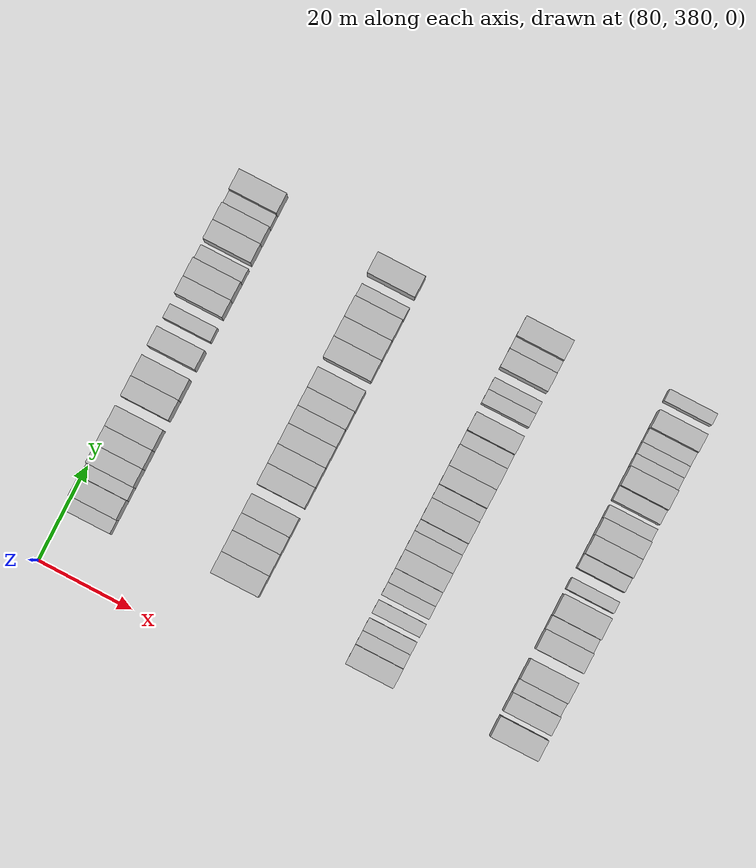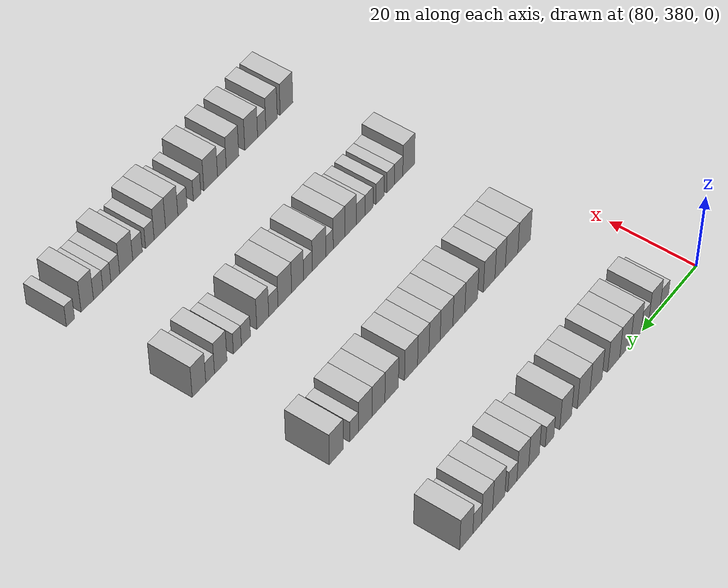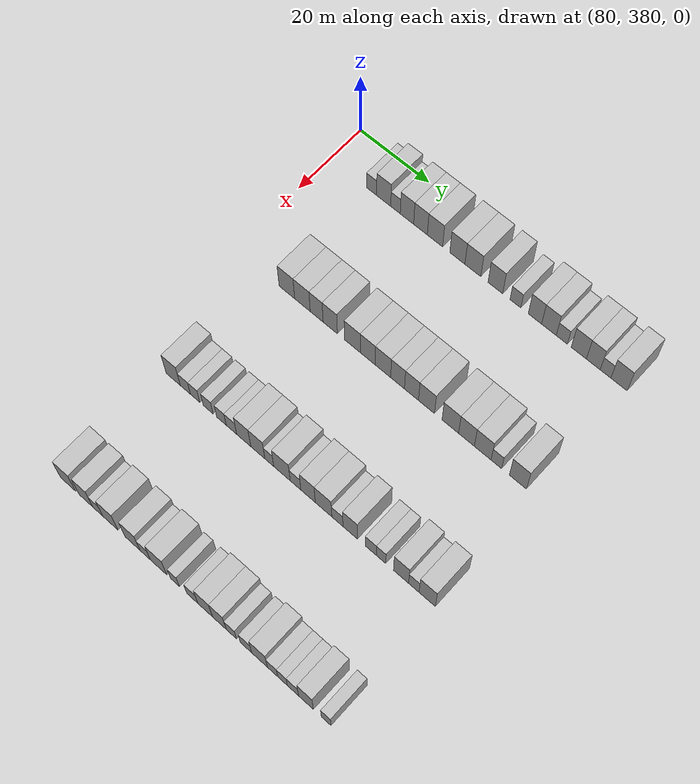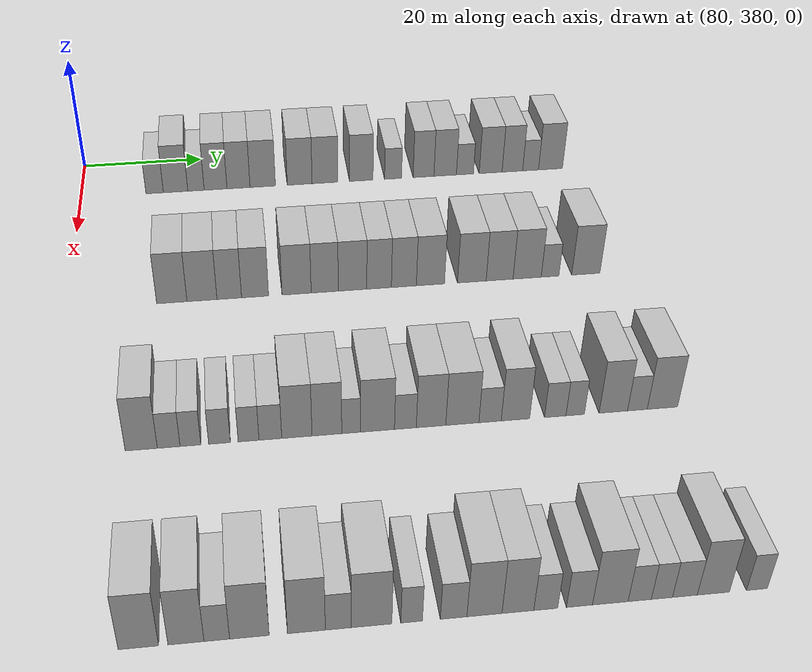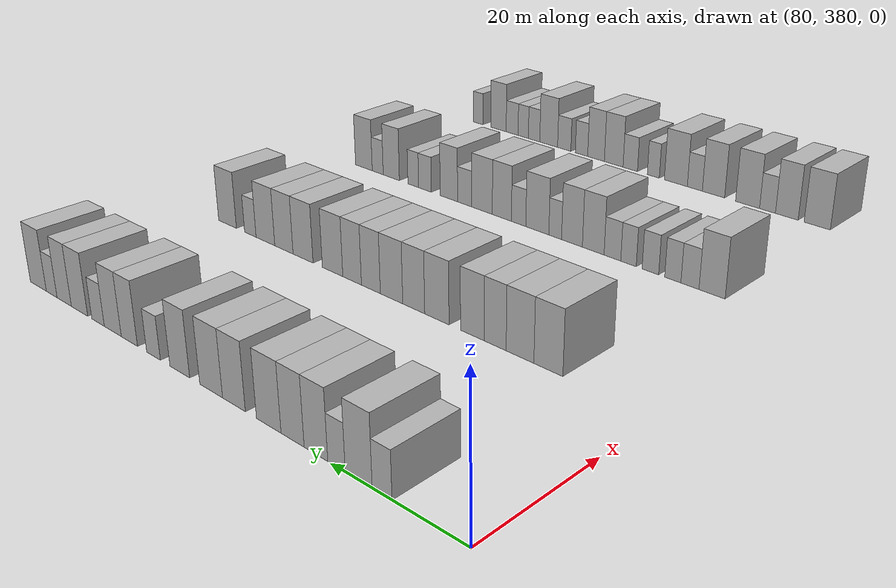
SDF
<sdf version="1.6">
 <world name="default">
  <model name="building_658">
   <static>1</static>
   <pose>85.0000 392.1734 0 0.000000 0.000000 0.000000</pose>
   <link name="link">
    <pose>0 0 3.00 0 0 0</pose>
    <collision name="collision"><geometry><box><size>10.0000 2.8932 6.0000</size></box></geometry></collision>
    <visual name="visual">
     <cast_shadows>0</cast_shadows>
     <geometry><box><size>10.0000 2.8932 6.0000</size></box></geometry>
     <material>
      <script>
       <uri>model://HANNAS_wall/materials/scripts</uri>
       <uri>model://HANNAS_wall/materials/textures</uri>
       <name>vrc/HANNAS_wall</name>
      </script>
     </material>
    </visual>
   </link>
  </model>
  <model name="building_659">
   <static>1</static>
   <pose>85.0000 395.6587 0 0.000000 0.000000 0.000000</pose>
   <link name="link">
    <pose>0 0 4.50 0 0 0</pose>
    <collision name="collision"><geometry><box><size>10.0000 4.0774 9.0000</size></box></geometry></collision>
    <visual name="visual">
     <cast_shadows>0</cast_shadows>
     <geometry><box><size>10.0000 4.0774 9.0000</size></box></geometry>
     <material>
      <script>
       <uri>model://HANNAS_wall/materials/scripts</uri>
       <uri>model://HANNAS_wall/materials/textures</uri>
       <name>vrc/HANNAS_wall</name>
      </script>
     </material>
    </visual>
   </link>
  </model>
  <model name="building_660">
   <static>1</static>
   <pose>85.0000 399.0635 0 0.000000 0.000000 0.000000</pose>
   <link name="link">
    <pose>0 0 3.00 0 0 0</pose>
    <collision name="collision"><geometry><box><size>10.0000 2.7323 6.0000</size></box></geometry></collision>
    <visual name="visual">
     <cast_shadows>0</cast_shadows>
     <geometry><box><size>10.0000 2.7323 6.0000</size></box></geometry>
     <material>
      <script>
       <uri>model://HANNAS_wall/materials/scripts</uri>
       <uri>model://HANNAS_wall/materials/textures</uri>
       <name>vrc/HANNAS_wall</name>
      </script>
     </material>
    </visual>
   </link>
  </model>
  <model name="building_661">
   <static>1</static>
   <pose>85.0000 402.3407 0 0.000000 0.000000 0.000000</pose>
   <link name="link">
    <pose>0 0 4.50 0 0 0</pose>
    <collision name="collision"><geometry><box><size>10.0000 3.8220 9.0000</size></box></geometry></collision>
    <visual name="visual">
     <cast_shadows>0</cast_shadows>
     <geometry><box><size>10.0000 3.8220 9.0000</size></box></geometry>
     <material>
      <script>
       <uri>model://HANNAS_wall/materials/scripts</uri>
       <uri>model://HANNAS_wall/materials/textures</uri>
       <name>vrc/HANNAS_wall</name>
      </script>
     </material>
    </visual>
   </link>
  </model>
  <model name="building_662">
   <static>1</static>
   <pose>85.0000 406.1912 0 0.000000 0.000000 0.000000</pose>
   <link name="link">
    <pose>0 0 4.50 0 0 0</pose>
    <collision name="collision"><geometry><box><size>10.0000 3.8790 9.0000</size></box></geometry></collision>
    <visual name="visual">
     <cast_shadows>0</cast_shadows>
     <geometry><box><size>10.0000 3.8790 9.0000</size></box></geometry>
     <material>
      <script>
       <uri>model://HANNAS_wall/materials/scripts</uri>
       <uri>model://HANNAS_wall/materials/textures</uri>
       <name>vrc/HANNAS_wall</name>
      </script>
     </material>
    </visual>
   </link>
  </model>
  <model name="building_663">
   <static>1</static>
   <pose>85.0000 410.2758 0 0.000000 0.000000 0.000000</pose>
   <link name="link">
    <pose>0 0 4.50 0 0 0</pose>
    <collision name="collision"><geometry><box><size>10.0000 4.2902 9.0000</size></box></geometry></collision>
    <visual name="visual">
     <cast_shadows>0</cast_shadows>
     <geometry><box><size>10.0000 4.2902 9.0000</size></box></geometry>
     <material>
      <script>
       <uri>model://HANNAS_wall/materials/scripts</uri>
       <uri>model://HANNAS_wall/materials/textures</uri>
       <name>vrc/HANNAS_wall</name>
      </script>
     </material>
    </visual>
   </link>
  </model>
  <model name="building_664">
   <static>1</static>
   <pose>85.0000 416.5309 0 0.000000 0.000000 0.000000</pose>
   <link name="link">
    <pose>0 0 4.50 0 0 0</pose>
    <collision name="collision"><geometry><box><size>10.0000 4.2202 9.0000</size></box></geometry></collision>
    <visual name="visual">
     <cast_shadows>0</cast_shadows>
     <geometry><box><size>10.0000 4.2202 9.0000</size></box></geometry>
     <material>
      <script>
       <uri>model://HANNAS_wall/materials/scripts</uri>
       <uri>model://HANNAS_wall/materials/textures</uri>
       <name>vrc/HANNAS_wall</name>
      </script>
     </material>
    </visual>
   </link>
  </model>
  <model name="building_665">
   <static>1</static>
   <pose>85.0000 420.8338 0 0.000000 0.000000 0.000000</pose>
   <link name="link">
    <pose>0 0 4.50 0 0 0</pose>
    <collision name="collision"><geometry><box><size>10.0000 4.3856 9.0000</size></box></geometry></collision>
    <visual name="visual">
     <cast_shadows>0</cast_shadows>
     <geometry><box><size>10.0000 4.3856 9.0000</size></box></geometry>
     <material>
      <script>
       <uri>model://HANNAS_wall/materials/scripts</uri>
       <uri>model://HANNAS_wall/materials/textures</uri>
       <name>vrc/HANNAS_wall</name>
      </script>
     </material>
    </visual>
   </link>
  </model>
  <model name="building_666">
   <static>1</static>
   <pose>85.0000 427.0337 0 0.000000 0.000000 0.000000</pose>
   <link name="link">
    <pose>0 0 4.50 0 0 0</pose>
    <collision name="collision"><geometry><box><size>10.0000 4.0142 9.0000</size></box></geometry></collision>
    <visual name="visual">
     <cast_shadows>0</cast_shadows>
     <geometry><box><size>10.0000 4.0142 9.0000</size></box></geometry>
     <material>
      <script>
       <uri>model://HANNAS_wall/materials/scripts</uri>
       <uri>model://HANNAS_wall/materials/textures</uri>
       <name>vrc/HANNAS_wall</name>
      </script>
     </material>
    </visual>
   </link>
  </model>
  <model name="building_667">
   <static>1</static>
   <pose>85.0000 432.5005 0 0.000000 0.000000 0.000000</pose>
   <link name="link">
    <pose>0 0 3.00 0 0 0</pose>
    <collision name="collision"><geometry><box><size>10.0000 2.9193 6.0000</size></box></geometry></collision>
    <visual name="visual">
     <cast_shadows>0</cast_shadows>
     <geometry><box><size>10.0000 2.9193 6.0000</size></box></geometry>
     <material>
      <script>
       <uri>model://HANNAS_wall/materials/scripts</uri>
       <uri>model://HANNAS_wall/materials/textures</uri>
       <name>vrc/HANNAS_wall</name>
      </script>
     </material>
    </visual>
   </link>
  </model>
  <model name="building_668">
   <static>1</static>
   <pose>85.0000 437.7618 0 0.000000 0.000000 0.000000</pose>
   <link name="link">
    <pose>0 0 4.50 0 0 0</pose>
    <collision name="collision"><geometry><box><size>10.0000 3.6034 9.0000</size></box></geometry></collision>
    <visual name="visual">
     <cast_shadows>0</cast_shadows>
     <geometry><box><size>10.0000 3.6034 9.0000</size></box></geometry>
     <material>
      <script>
       <uri>model://HANNAS_wall/materials/scripts</uri>
       <uri>model://HANNAS_wall/materials/textures</uri>
       <name>vrc/HANNAS_wall</name>
      </script>
     </material>
    </visual>
   </link>
  </model>
  <model name="building_669">
   <static>1</static>
   <pose>85.0000 441.5146 0 0.000000 0.000000 0.000000</pose>
   <link name="link">
    <pose>0 0 4.50 0 0 0</pose>
    <collision name="collision"><geometry><box><size>10.0000 3.9021 9.0000</size></box></geometry></collision>
    <visual name="visual">
     <cast_shadows>0</cast_shadows>
     <geometry><box><size>10.0000 3.9021 9.0000</size></box></geometry>
     <material>
      <script>
       <uri>model://HANNAS_wall/materials/scripts</uri>
       <uri>model://HANNAS_wall/materials/textures</uri>
       <name>vrc/HANNAS_wall</name>
      </script>
     </material>
    </visual>
   </link>
  </model>
  <model name="building_670">
   <static>1</static>
   <pose>85.0000 444.9420 0 0.000000 0.000000 0.000000</pose>
   <link name="link">
    <pose>0 0 3.00 0 0 0</pose>
    <collision name="collision"><geometry><box><size>10.0000 2.9528 6.0000</size></box></geometry></collision>
    <visual name="visual">
     <cast_shadows>0</cast_shadows>
     <geometry><box><size>10.0000 2.9528 6.0000</size></box></geometry>
     <material>
      <script>
       <uri>model://HANNAS_wall/materials/scripts</uri>
       <uri>model://HANNAS_wall/materials/textures</uri>
       <name>vrc/HANNAS_wall</name>
      </script>
     </material>
    </visual>
   </link>
  </model>
  <model name="building_671">
   <static>1</static>
   <pose>85.0000 449.4166 0 0.000000 0.000000 0.000000</pose>
   <link name="link">
    <pose>0 0 4.50 0 0 0</pose>
    <collision name="collision"><geometry><box><size>10.0000 3.9965 9.0000</size></box></geometry></collision>
    <visual name="visual">
     <cast_shadows>0</cast_shadows>
     <geometry><box><size>10.0000 3.9965 9.0000</size></box></geometry>
     <material>
      <script>
       <uri>model://HANNAS_wall/materials/scripts</uri>
       <uri>model://HANNAS_wall/materials/textures</uri>
       <name>vrc/HANNAS_wall</name>
      </script>
     </material>
    </visual>
   </link>
  </model>
  <model name="building_672">
   <static>1</static>
   <pose>85.0000 453.2218 0 0.000000 0.000000 0.000000</pose>
   <link name="link">
    <pose>0 0 4.50 0 0 0</pose>
    <collision name="collision"><geometry><box><size>10.0000 3.6138 9.0000</size></box></geometry></collision>
    <visual name="visual">
     <cast_shadows>0</cast_shadows>
     <geometry><box><size>10.0000 3.6138 9.0000</size></box></geometry>
     <material>
      <script>
       <uri>model://HANNAS_wall/materials/scripts</uri>
       <uri>model://HANNAS_wall/materials/textures</uri>
       <name>vrc/HANNAS_wall</name>
      </script>
     </material>
    </visual>
   </link>
  </model>
  <model name="building_673">
   <static>1</static>
   <pose>85.0000 456.4188 0 0.000000 0.000000 0.000000</pose>
   <link name="link">
    <pose>0 0 3.00 0 0 0</pose>
    <collision name="collision"><geometry><box><size>10.0000 2.7802 6.0000</size></box></geometry></collision>
    <visual name="visual">
     <cast_shadows>0</cast_shadows>
     <geometry><box><size>10.0000 2.7802 6.0000</size></box></geometry>
     <material>
      <script>
       <uri>model://HANNAS_wall/materials/scripts</uri>
       <uri>model://HANNAS_wall/materials/textures</uri>
       <name>vrc/HANNAS_wall</name>
      </script>
     </material>
    </visual>
   </link>
  </model>
  <model name="building_674">
   <static>1</static>
   <pose>85.0000 459.9194 0 0.000000 0.000000 0.000000</pose>
   <link name="link">
    <pose>0 0 4.50 0 0 0</pose>
    <collision name="collision"><geometry><box><size>10.0000 4.2210 9.0000</size></box></geometry></collision>
    <visual name="visual">
     <cast_shadows>0</cast_shadows>
     <geometry><box><size>10.0000 4.2210 9.0000</size></box></geometry>
     <material>
      <script>
       <uri>model://HANNAS_wall/materials/scripts</uri>
       <uri>model://HANNAS_wall/materials/textures</uri>
       <name>vrc/HANNAS_wall</name>
      </script>
     </material>
    </visual>
   </link>
  </model>
  <model name="building_876">
   <static>1</static>
   <pose>115.0000 395.3106 0 0.000000 0.000000 0.000000</pose>
   <link name="link">
    <pose>0 0 4.50 0 0 0</pose>
    <collision name="collision"><geometry><box><size>10.0000 4.4560 9.0000</size></box></geometry></collision>
    <visual name="visual">
     <cast_shadows>0</cast_shadows>
     <geometry><box><size>10.0000 4.4560 9.0000</size></box></geometry>
     <material>
      <script>
       <uri>model://HANNAS_wall/materials/scripts</uri>
       <uri>model://HANNAS_wall/materials/textures</uri>
       <name>vrc/HANNAS_wall</name>
      </script>
     </material>
    </visual>
   </link>
  </model>
  <model name="building_877">
   <static>1</static>
   <pose>115.0000 399.7541 0 0.000000 0.000000 0.000000</pose>
   <link name="link">
    <pose>0 0 4.50 0 0 0</pose>
    <collision name="collision"><geometry><box><size>10.0000 4.4310 9.0000</size></box></geometry></collision>
    <visual name="visual">
     <cast_shadows>0</cast_shadows>
     <geometry><box><size>10.0000 4.4310 9.0000</size></box></geometry>
     <material>
      <script>
       <uri>model://HANNAS_wall/materials/scripts</uri>
       <uri>model://HANNAS_wall/materials/textures</uri>
       <name>vrc/HANNAS_wall</name>
      </script>
     </material>
    </visual>
   </link>
  </model>
  <model name="building_878">
   <static>1</static>
   <pose>115.0000 403.7869 0 0.000000 0.000000 0.000000</pose>
   <link name="link">
    <pose>0 0 4.50 0 0 0</pose>
    <collision name="collision"><geometry><box><size>10.0000 3.6346 9.0000</size></box></geometry></collision>
    <visual name="visual">
     <cast_shadows>0</cast_shadows>
     <geometry><box><size>10.0000 3.6346 9.0000</size></box></geometry>
     <material>
      <script>
       <uri>model://HANNAS_wall/materials/scripts</uri>
       <uri>model://HANNAS_wall/materials/textures</uri>
       <name>vrc/HANNAS_wall</name>
      </script>
     </material>
    </visual>
   </link>
  </model>
  <model name="building_879">
   <static>1</static>
   <pose>115.0000 407.6170 0 0.000000 0.000000 0.000000</pose>
   <link name="link">
    <pose>0 0 4.50 0 0 0</pose>
    <collision name="collision"><geometry><box><size>10.0000 4.0255 9.0000</size></box></geometry></collision>
    <visual name="visual">
     <cast_shadows>0</cast_shadows>
     <geometry><box><size>10.0000 4.0255 9.0000</size></box></geometry>
     <material>
      <script>
       <uri>model://HANNAS_wall/materials/scripts</uri>
       <uri>model://HANNAS_wall/materials/textures</uri>
       <name>vrc/HANNAS_wall</name>
      </script>
     </material>
    </visual>
   </link>
  </model>
  <model name="building_880">
   <static>1</static>
   <pose>115.0000 413.8127 0 0.000000 0.000000 0.000000</pose>
   <link name="link">
    <pose>0 0 4.50 0 0 0</pose>
    <collision name="collision"><geometry><box><size>10.0000 4.3660 9.0000</size></box></geometry></collision>
    <visual name="visual">
     <cast_shadows>0</cast_shadows>
     <geometry><box><size>10.0000 4.3660 9.0000</size></box></geometry>
     <material>
      <script>
       <uri>model://HANNAS_wall/materials/scripts</uri>
       <uri>model://HANNAS_wall/materials/textures</uri>
       <name>vrc/HANNAS_wall</name>
      </script>
     </material>
    </visual>
   </link>
  </model>
  <model name="building_881">
   <static>1</static>
   <pose>115.0000 418.0330 0 0.000000 0.000000 0.000000</pose>
   <link name="link">
    <pose>0 0 4.50 0 0 0</pose>
    <collision name="collision"><geometry><box><size>10.0000 4.0745 9.0000</size></box></geometry></collision>
    <visual name="visual">
     <cast_shadows>0</cast_shadows>
     <geometry><box><size>10.0000 4.0745 9.0000</size></box></geometry>
     <material>
      <script>
       <uri>model://HANNAS_wall/materials/scripts</uri>
       <uri>model://HANNAS_wall/materials/textures</uri>
       <name>vrc/HANNAS_wall</name>
      </script>
     </material>
    </visual>
   </link>
  </model>
  <model name="building_882">
   <static>1</static>
   <pose>115.0000 422.2155 0 0.000000 0.000000 0.000000</pose>
   <link name="link">
    <pose>0 0 4.50 0 0 0</pose>
    <collision name="collision"><geometry><box><size>10.0000 4.2906 9.0000</size></box></geometry></collision>
    <visual name="visual">
     <cast_shadows>0</cast_shadows>
     <geometry><box><size>10.0000 4.2906 9.0000</size></box></geometry>
     <material>
      <script>
       <uri>model://HANNAS_wall/materials/scripts</uri>
       <uri>model://HANNAS_wall/materials/textures</uri>
       <name>vrc/HANNAS_wall</name>
      </script>
     </material>
    </visual>
   </link>
  </model>
  <model name="building_883">
   <static>1</static>
   <pose>115.0000 426.2298 0 0.000000 0.000000 0.000000</pose>
   <link name="link">
    <pose>0 0 4.50 0 0 0</pose>
    <collision name="collision"><geometry><box><size>10.0000 3.7380 9.0000</size></box></geometry></collision>
    <visual name="visual">
     <cast_shadows>0</cast_shadows>
     <geometry><box><size>10.0000 3.7380 9.0000</size></box></geometry>
     <material>
      <script>
       <uri>model://HANNAS_wall/materials/scripts</uri>
       <uri>model://HANNAS_wall/materials/textures</uri>
       <name>vrc/HANNAS_wall</name>
      </script>
     </material>
    </visual>
   </link>
  </model>
  <model name="building_884">
   <static>1</static>
   <pose>115.0000 429.9997 0 0.000000 0.000000 0.000000</pose>
   <link name="link">
    <pose>0 0 4.50 0 0 0</pose>
    <collision name="collision"><geometry><box><size>10.0000 3.8019 9.0000</size></box></geometry></collision>
    <visual name="visual">
     <cast_shadows>0</cast_shadows>
     <geometry><box><size>10.0000 3.8019 9.0000</size></box></geometry>
     <material>
      <script>
       <uri>model://HANNAS_wall/materials/scripts</uri>
       <uri>model://HANNAS_wall/materials/textures</uri>
       <name>vrc/HANNAS_wall</name>
      </script>
     </material>
    </visual>
   </link>
  </model>
  <model name="building_885">
   <static>1</static>
   <pose>115.0000 434.0462 0 0.000000 0.000000 0.000000</pose>
   <link name="link">
    <pose>0 0 4.50 0 0 0</pose>
    <collision name="collision"><geometry><box><size>10.0000 4.2912 9.0000</size></box></geometry></collision>
    <visual name="visual">
     <cast_shadows>0</cast_shadows>
     <geometry><box><size>10.0000 4.2912 9.0000</size></box></geometry>
     <material>
      <script>
       <uri>model://HANNAS_wall/materials/scripts</uri>
       <uri>model://HANNAS_wall/materials/textures</uri>
       <name>vrc/HANNAS_wall</name>
      </script>
     </material>
    </visual>
   </link>
  </model>
  <model name="building_886">
   <static>1</static>
   <pose>115.0000 440.3909 0 0.000000 0.000000 0.000000</pose>
   <link name="link">
    <pose>0 0 4.50 0 0 0</pose>
    <collision name="collision"><geometry><box><size>10.0000 4.3982 9.0000</size></box></geometry></collision>
    <visual name="visual">
     <cast_shadows>0</cast_shadows>
     <geometry><box><size>10.0000 4.3982 9.0000</size></box></geometry>
     <material>
      <script>
       <uri>model://HANNAS_wall/materials/scripts</uri>
       <uri>model://HANNAS_wall/materials/textures</uri>
       <name>vrc/HANNAS_wall</name>
      </script>
     </material>
    </visual>
   </link>
  </model>
  <model name="building_887">
   <static>1</static>
   <pose>115.0000 444.6639 0 0.000000 0.000000 0.000000</pose>
   <link name="link">
    <pose>0 0 4.50 0 0 0</pose>
    <collision name="collision"><geometry><box><size>10.0000 4.1477 9.0000</size></box></geometry></collision>
    <visual name="visual">
     <cast_shadows>0</cast_shadows>
     <geometry><box><size>10.0000 4.1477 9.0000</size></box></geometry>
     <material>
      <script>
       <uri>model://HANNAS_wall/materials/scripts</uri>
       <uri>model://HANNAS_wall/materials/textures</uri>
       <name>vrc/HANNAS_wall</name>
      </script>
     </material>
    </visual>
   </link>
  </model>
  <model name="building_888">
   <static>1</static>
   <pose>115.0000 448.9233 0 0.000000 0.000000 0.000000</pose>
   <link name="link">
    <pose>0 0 4.50 0 0 0</pose>
    <collision name="collision"><geometry><box><size>10.0000 4.3712 9.0000</size></box></geometry></collision>
    <visual name="visual">
     <cast_shadows>0</cast_shadows>
     <geometry><box><size>10.0000 4.3712 9.0000</size></box></geometry>
     <material>
      <script>
       <uri>model://HANNAS_wall/materials/scripts</uri>
       <uri>model://HANNAS_wall/materials/textures</uri>
       <name>vrc/HANNAS_wall</name>
      </script>
     </material>
    </visual>
   </link>
  </model>
  <model name="building_889">
   <static>1</static>
   <pose>115.0000 452.4813 0 0.000000 0.000000 0.000000</pose>
   <link name="link">
    <pose>0 0 3.00 0 0 0</pose>
    <collision name="collision"><geometry><box><size>10.0000 2.7447 6.0000</size></box></geometry></collision>
    <visual name="visual">
     <cast_shadows>0</cast_shadows>
     <geometry><box><size>10.0000 2.7447 6.0000</size></box></geometry>
     <material>
      <script>
       <uri>model://HANNAS_wall/materials/scripts</uri>
       <uri>model://HANNAS_wall/materials/textures</uri>
       <name>vrc/HANNAS_wall</name>
      </script>
     </material>
    </visual>
   </link>
  </model>
  <model name="building_890">
   <static>1</static>
   <pose>115.0000 458.0567 0 0.000000 0.000000 0.000000</pose>
   <link name="link">
    <pose>0 0 4.50 0 0 0</pose>
    <collision name="collision"><geometry><box><size>10.0000 4.4062 9.0000</size></box></geometry></collision>
    <visual name="visual">
     <cast_shadows>0</cast_shadows>
     <geometry><box><size>10.0000 4.4062 9.0000</size></box></geometry>
     <material>
      <script>
       <uri>model://HANNAS_wall/materials/scripts</uri>
       <uri>model://HANNAS_wall/materials/textures</uri>
       <name>vrc/HANNAS_wall</name>
      </script>
     </material>
    </visual>
   </link>
  </model>
  <model name="building_1101">
   <static>1</static>
   <pose>145.0000 391.7093 0 0.000000 0.000000 0.000000</pose>
   <link name="link">
    <pose>0 0 4.50 0 0 0</pose>
    <collision name="collision"><geometry><box><size>10.0000 4.0834 9.0000</size></box></geometry></collision>
    <visual name="visual">
     <cast_shadows>0</cast_shadows>
     <geometry><box><size>10.0000 4.0834 9.0000</size></box></geometry>
     <material>
      <script>
       <uri>model://HANNAS_wall/materials/scripts</uri>
       <uri>model://HANNAS_wall/materials/textures</uri>
       <name>vrc/HANNAS_wall</name>
      </script>
     </material>
    </visual>
   </link>
  </model>
  <model name="building_1102">
   <static>1</static>
   <pose>145.0000 395.1966 0 0.000000 0.000000 0.000000</pose>
   <link name="link">
    <pose>0 0 3.00 0 0 0</pose>
    <collision name="collision"><geometry><box><size>10.0000 2.8912 6.0000</size></box></geometry></collision>
    <visual name="visual">
     <cast_shadows>0</cast_shadows>
     <geometry><box><size>10.0000 2.8912 6.0000</size></box></geometry>
     <material>
      <script>
       <uri>model://HANNAS_wall/materials/scripts</uri>
       <uri>model://HANNAS_wall/materials/textures</uri>
       <name>vrc/HANNAS_wall</name>
      </script>
     </material>
    </visual>
   </link>
  </model>
  <model name="building_1103">
   <static>1</static>
   <pose>145.0000 397.9670 0 0.000000 0.000000 0.000000</pose>
   <link name="link">
    <pose>0 0 3.00 0 0 0</pose>
    <collision name="collision"><geometry><box><size>10.0000 2.6497 6.0000</size></box></geometry></collision>
    <visual name="visual">
     <cast_shadows>0</cast_shadows>
     <geometry><box><size>10.0000 2.6497 6.0000</size></box></geometry>
     <material>
      <script>
       <uri>model://HANNAS_wall/materials/scripts</uri>
       <uri>model://HANNAS_wall/materials/textures</uri>
       <name>vrc/HANNAS_wall</name>
      </script>
     </material>
    </visual>
   </link>
  </model>
  <model name="building_1104">
   <static>1</static>
   <pose>145.0000 401.6827 0 0.000000 0.000000 0.000000</pose>
   <link name="link">
    <pose>0 0 3.00 0 0 0</pose>
    <collision name="collision"><geometry><box><size>10.0000 2.7816 6.0000</size></box></geometry></collision>
    <visual name="visual">
     <cast_shadows>0</cast_shadows>
     <geometry><box><size>10.0000 2.7816 6.0000</size></box></geometry>
     <material>
      <script>
       <uri>model://HANNAS_wall/materials/scripts</uri>
       <uri>model://HANNAS_wall/materials/textures</uri>
       <name>vrc/HANNAS_wall</name>
      </script>
     </material>
    </visual>
   </link>
  </model>
  <model name="building_1105">
   <static>1</static>
   <pose>145.0000 405.4120 0 0.000000 0.000000 0.000000</pose>
   <link name="link">
    <pose>0 0 3.00 0 0 0</pose>
    <collision name="collision"><geometry><box><size>10.0000 2.6771 6.0000</size></box></geometry></collision>
    <visual name="visual">
     <cast_shadows>0</cast_shadows>
     <geometry><box><size>10.0000 2.6771 6.0000</size></box></geometry>
     <material>
      <script>
       <uri>model://HANNAS_wall/materials/scripts</uri>
       <uri>model://HANNAS_wall/materials/textures</uri>
       <name>vrc/HANNAS_wall</name>
      </script>
     </material>
    </visual>
   </link>
  </model>
  <model name="building_1106">
   <static>1</static>
   <pose>145.0000 408.2205 0 0.000000 0.000000 0.000000</pose>
   <link name="link">
    <pose>0 0 3.00 0 0 0</pose>
    <collision name="collision"><geometry><box><size>10.0000 2.9399 6.0000</size></box></geometry></collision>
    <visual name="visual">
     <cast_shadows>0</cast_shadows>
     <geometry><box><size>10.0000 2.9399 6.0000</size></box></geometry>
     <material>
      <script>
       <uri>model://HANNAS_wall/materials/scripts</uri>
       <uri>model://HANNAS_wall/materials/textures</uri>
       <name>vrc/HANNAS_wall</name>
      </script>
     </material>
    </visual>
   </link>
  </model>
  <model name="building_1107">
   <static>1</static>
   <pose>145.0000 411.6529 0 0.000000 0.000000 0.000000</pose>
   <link name="link">
    <pose>0 0 4.50 0 0 0</pose>
    <collision name="collision"><geometry><box><size>10.0000 3.9250 9.0000</size></box></geometry></collision>
    <visual name="visual">
     <cast_shadows>0</cast_shadows>
     <geometry><box><size>10.0000 3.9250 9.0000</size></box></geometry>
     <material>
      <script>
       <uri>model://HANNAS_wall/materials/scripts</uri>
       <uri>model://HANNAS_wall/materials/textures</uri>
       <name>vrc/HANNAS_wall</name>
      </script>
     </material>
    </visual>
   </link>
  </model>
  <model name="building_1108">
   <static>1</static>
   <pose>145.0000 415.5538 0 0.000000 0.000000 0.000000</pose>
   <link name="link">
    <pose>0 0 4.50 0 0 0</pose>
    <collision name="collision"><geometry><box><size>10.0000 3.8768 9.0000</size></box></geometry></collision>
    <visual name="visual">
     <cast_shadows>0</cast_shadows>
     <geometry><box><size>10.0000 3.8768 9.0000</size></box></geometry>
     <material>
      <script>
       <uri>model://HANNAS_wall/materials/scripts</uri>
       <uri>model://HANNAS_wall/materials/textures</uri>
       <name>vrc/HANNAS_wall</name>
      </script>
     </material>
    </visual>
   </link>
  </model>
  <model name="building_1109">
   <static>1</static>
   <pose>145.0000 418.7015 0 0.000000 0.000000 0.000000</pose>
   <link name="link">
    <pose>0 0 3.00 0 0 0</pose>
    <collision name="collision"><geometry><box><size>10.0000 2.4186 6.0000</size></box></geometry></collision>
    <visual name="visual">
     <cast_shadows>0</cast_shadows>
     <geometry><box><size>10.0000 2.4186 6.0000</size></box></geometry>
     <material>
      <script>
       <uri>model://HANNAS_wall/materials/scripts</uri>
       <uri>model://HANNAS_wall/materials/textures</uri>
       <name>vrc/HANNAS_wall</name>
      </script>
     </material>
    </visual>
   </link>
  </model>
  <model name="building_1110">
   <static>1</static>
   <pose>145.0000 422.1548 0 0.000000 0.000000 0.000000</pose>
   <link name="link">
    <pose>0 0 4.50 0 0 0</pose>
    <collision name="collision"><geometry><box><size>10.0000 4.4879 9.0000</size></box></geometry></collision>
    <visual name="visual">
     <cast_shadows>0</cast_shadows>
     <geometry><box><size>10.0000 4.4879 9.0000</size></box></geometry>
     <material>
      <script>
       <uri>model://HANNAS_wall/materials/scripts</uri>
       <uri>model://HANNAS_wall/materials/textures</uri>
       <name>vrc/HANNAS_wall</name>
      </script>
     </material>
    </visual>
   </link>
  </model>
  <model name="building_1111">
   <static>1</static>
   <pose>145.0000 425.8361 0 0.000000 0.000000 0.000000</pose>
   <link name="link">
    <pose>0 0 3.00 0 0 0</pose>
    <collision name="collision"><geometry><box><size>10.0000 2.8748 6.0000</size></box></geometry></collision>
    <visual name="visual">
     <cast_shadows>0</cast_shadows>
     <geometry><box><size>10.0000 2.8748 6.0000</size></box></geometry>
     <material>
      <script>
       <uri>model://HANNAS_wall/materials/scripts</uri>
       <uri>model://HANNAS_wall/materials/textures</uri>
       <name>vrc/HANNAS_wall</name>
      </script>
     </material>
    </visual>
   </link>
  </model>
  <model name="building_1112">
   <static>1</static>
   <pose>145.0000 429.2253 0 0.000000 0.000000 0.000000</pose>
   <link name="link">
    <pose>0 0 4.50 0 0 0</pose>
    <collision name="collision"><geometry><box><size>10.0000 3.9035 9.0000</size></box></geometry></collision>
    <visual name="visual">
     <cast_shadows>0</cast_shadows>
     <geometry><box><size>10.0000 3.9035 9.0000</size></box></geometry>
     <material>
      <script>
       <uri>model://HANNAS_wall/materials/scripts</uri>
       <uri>model://HANNAS_wall/materials/textures</uri>
       <name>vrc/HANNAS_wall</name>
      </script>
     </material>
    </visual>
   </link>
  </model>
  <model name="building_1113">
   <static>1</static>
   <pose>145.0000 433.3742 0 0.000000 0.000000 0.000000</pose>
   <link name="link">
    <pose>0 0 4.50 0 0 0</pose>
    <collision name="collision"><geometry><box><size>10.0000 4.3943 9.0000</size></box></geometry></collision>
    <visual name="visual">
     <cast_shadows>0</cast_shadows>
     <geometry><box><size>10.0000 4.3943 9.0000</size></box></geometry>
     <material>
      <script>
       <uri>model://HANNAS_wall/materials/scripts</uri>
       <uri>model://HANNAS_wall/materials/textures</uri>
       <name>vrc/HANNAS_wall</name>
      </script>
     </material>
    </visual>
   </link>
  </model>
  <model name="building_1114">
   <static>1</static>
   <pose>145.0000 437.0616 0 0.000000 0.000000 0.000000</pose>
   <link name="link">
    <pose>0 0 3.00 0 0 0</pose>
    <collision name="collision"><geometry><box><size>10.0000 2.9807 6.0000</size></box></geometry></collision>
    <visual name="visual">
     <cast_shadows>0</cast_shadows>
     <geometry><box><size>10.0000 2.9807 6.0000</size></box></geometry>
     <material>
      <script>
       <uri>model://HANNAS_wall/materials/scripts</uri>
       <uri>model://HANNAS_wall/materials/textures</uri>
       <name>vrc/HANNAS_wall</name>
      </script>
     </material>
    </visual>
   </link>
  </model>
  <model name="building_1115">
   <static>1</static>
   <pose>145.0000 440.4588 0 0.000000 0.000000 0.000000</pose>
   <link name="link">
    <pose>0 0 4.50 0 0 0</pose>
    <collision name="collision"><geometry><box><size>10.0000 3.8136 9.0000</size></box></geometry></collision>
    <visual name="visual">
     <cast_shadows>0</cast_shadows>
     <geometry><box><size>10.0000 3.8136 9.0000</size></box></geometry>
     <material>
      <script>
       <uri>model://HANNAS_wall/materials/scripts</uri>
       <uri>model://HANNAS_wall/materials/textures</uri>
       <name>vrc/HANNAS_wall</name>
      </script>
     </material>
    </visual>
   </link>
  </model>
  <model name="building_1116">
   <static>1</static>
   <pose>145.0000 445.8115 0 0.000000 0.000000 0.000000</pose>
   <link name="link">
    <pose>0 0 3.00 0 0 0</pose>
    <collision name="collision"><geometry><box><size>10.0000 2.8920 6.0000</size></box></geometry></collision>
    <visual name="visual">
     <cast_shadows>0</cast_shadows>
     <geometry><box><size>10.0000 2.8920 6.0000</size></box></geometry>
     <material>
      <script>
       <uri>model://HANNAS_wall/materials/scripts</uri>
       <uri>model://HANNAS_wall/materials/textures</uri>
       <name>vrc/HANNAS_wall</name>
      </script>
     </material>
    </visual>
   </link>
  </model>
  <model name="building_1117">
   <static>1</static>
   <pose>145.0000 448.4989 0 0.000000 0.000000 0.000000</pose>
   <link name="link">
    <pose>0 0 3.00 0 0 0</pose>
    <collision name="collision"><geometry><box><size>10.0000 2.4828 6.0000</size></box></geometry></collision>
    <visual name="visual">
     <cast_shadows>0</cast_shadows>
     <geometry><box><size>10.0000 2.4828 6.0000</size></box></geometry>
     <material>
      <script>
       <uri>model://HANNAS_wall/materials/scripts</uri>
       <uri>model://HANNAS_wall/materials/textures</uri>
       <name>vrc/HANNAS_wall</name>
      </script>
     </material>
    </visual>
   </link>
  </model>
  <model name="building_1118">
   <static>1</static>
   <pose>145.0000 453.6779 0 0.000000 0.000000 0.000000</pose>
   <link name="link">
    <pose>0 0 4.50 0 0 0</pose>
    <collision name="collision"><geometry><box><size>10.0000 3.8751 9.0000</size></box></geometry></collision>
    <visual name="visual">
     <cast_shadows>0</cast_shadows>
     <geometry><box><size>10.0000 3.8751 9.0000</size></box></geometry>
     <material>
      <script>
       <uri>model://HANNAS_wall/materials/scripts</uri>
       <uri>model://HANNAS_wall/materials/textures</uri>
       <name>vrc/HANNAS_wall</name>
      </script>
     </material>
    </visual>
   </link>
  </model>
  <model name="building_1119">
   <static>1</static>
   <pose>145.0000 456.9583 0 0.000000 0.000000 0.000000</pose>
   <link name="link">
    <pose>0 0 3.00 0 0 0</pose>
    <collision name="collision"><geometry><box><size>10.0000 2.6856 6.0000</size></box></geometry></collision>
    <visual name="visual">
     <cast_shadows>0</cast_shadows>
     <geometry><box><size>10.0000 2.6856 6.0000</size></box></geometry>
     <material>
      <script>
       <uri>model://HANNAS_wall/materials/scripts</uri>
       <uri>model://HANNAS_wall/materials/textures</uri>
       <name>vrc/HANNAS_wall</name>
      </script>
     </material>
    </visual>
   </link>
  </model>
  <model name="building_1120">
   <static>1</static>
   <pose>145.0000 460.3813 0 0.000000 0.000000 0.000000</pose>
   <link name="link">
    <pose>0 0 4.50 0 0 0</pose>
    <collision name="collision"><geometry><box><size>10.0000 4.1604 9.0000</size></box></geometry></collision>
    <visual name="visual">
     <cast_shadows>0</cast_shadows>
     <geometry><box><size>10.0000 4.1604 9.0000</size></box></geometry>
     <material>
      <script>
       <uri>model://HANNAS_wall/materials/scripts</uri>
       <uri>model://HANNAS_wall/materials/textures</uri>
       <name>vrc/HANNAS_wall</name>
      </script>
     </material>
    </visual>
   </link>
  </model>
  <model name="building_1343">
   <static>1</static>
   <pose>175.0000 392.2842 0 0.000000 0.000000 0.000000</pose>
   <link name="link">
    <pose>0 0 4.50 0 0 0</pose>
    <collision name="collision"><geometry><box><size>10.0000 4.3363 9.0000</size></box></geometry></collision>
    <visual name="visual">
     <cast_shadows>0</cast_shadows>
     <geometry><box><size>10.0000 4.3363 9.0000</size></box></geometry>
     <material>
      <script>
       <uri>model://HANNAS_wall/materials/scripts</uri>
       <uri>model://HANNAS_wall/materials/textures</uri>
       <name>vrc/HANNAS_wall</name>
      </script>
     </material>
    </visual>
   </link>
  </model>
  <model name="building_1344">
   <static>1</static>
   <pose>175.0000 397.3971 0 0.000000 0.000000 0.000000</pose>
   <link name="link">
    <pose>0 0 4.50 0 0 0</pose>
    <collision name="collision"><geometry><box><size>10.0000 3.8896 9.0000</size></box></geometry></collision>
    <visual name="visual">
     <cast_shadows>0</cast_shadows>
     <geometry><box><size>10.0000 3.8896 9.0000</size></box></geometry>
     <material>
      <script>
       <uri>model://HANNAS_wall/materials/scripts</uri>
       <uri>model://HANNAS_wall/materials/textures</uri>
       <name>vrc/HANNAS_wall</name>
      </script>
     </material>
    </visual>
   </link>
  </model>
  <model name="building_1345">
   <static>1</static>
   <pose>175.0000 400.7300 0 0.000000 0.000000 0.000000</pose>
   <link name="link">
    <pose>0 0 3.00 0 0 0</pose>
    <collision name="collision"><geometry><box><size>10.0000 2.7761 6.0000</size></box></geometry></collision>
    <visual name="visual">
     <cast_shadows>0</cast_shadows>
     <geometry><box><size>10.0000 2.7761 6.0000</size></box></geometry>
     <material>
      <script>
       <uri>model://HANNAS_wall/materials/scripts</uri>
       <uri>model://HANNAS_wall/materials/textures</uri>
       <name>vrc/HANNAS_wall</name>
      </script>
     </material>
    </visual>
   </link>
  </model>
  <model name="building_1346">
   <static>1</static>
   <pose>175.0000 404.2693 0 0.000000 0.000000 0.000000</pose>
   <link name="link">
    <pose>0 0 4.50 0 0 0</pose>
    <collision name="collision"><geometry><box><size>10.0000 4.3025 9.0000</size></box></geometry></collision>
    <visual name="visual">
     <cast_shadows>0</cast_shadows>
     <geometry><box><size>10.0000 4.3025 9.0000</size></box></geometry>
     <material>
      <script>
       <uri>model://HANNAS_wall/materials/scripts</uri>
       <uri>model://HANNAS_wall/materials/textures</uri>
       <name>vrc/HANNAS_wall</name>
      </script>
     </material>
    </visual>
   </link>
  </model>
  <model name="building_1347">
   <static>1</static>
   <pose>175.0000 410.5007 0 0.000000 0.000000 0.000000</pose>
   <link name="link">
    <pose>0 0 4.50 0 0 0</pose>
    <collision name="collision"><geometry><box><size>10.0000 4.1603 9.0000</size></box></geometry></collision>
    <visual name="visual">
     <cast_shadows>0</cast_shadows>
     <geometry><box><size>10.0000 4.1603 9.0000</size></box></geometry>
     <material>
      <script>
       <uri>model://HANNAS_wall/materials/scripts</uri>
       <uri>model://HANNAS_wall/materials/textures</uri>
       <name>vrc/HANNAS_wall</name>
      </script>
     </material>
    </visual>
   </link>
  </model>
  <model name="building_1348">
   <static>1</static>
   <pose>175.0000 414.0146 0 0.000000 0.000000 0.000000</pose>
   <link name="link">
    <pose>0 0 3.00 0 0 0</pose>
    <collision name="collision"><geometry><box><size>10.0000 2.8676 6.0000</size></box></geometry></collision>
    <visual name="visual">
     <cast_shadows>0</cast_shadows>
     <geometry><box><size>10.0000 2.8676 6.0000</size></box></geometry>
     <material>
      <script>
       <uri>model://HANNAS_wall/materials/scripts</uri>
       <uri>model://HANNAS_wall/materials/textures</uri>
       <name>vrc/HANNAS_wall</name>
      </script>
     </material>
    </visual>
   </link>
  </model>
  <model name="building_1349">
   <static>1</static>
   <pose>175.0000 417.6911 0 0.000000 0.000000 0.000000</pose>
   <link name="link">
    <pose>0 0 4.50 0 0 0</pose>
    <collision name="collision"><geometry><box><size>10.0000 4.4854 9.0000</size></box></geometry></collision>
    <visual name="visual">
     <cast_shadows>0</cast_shadows>
     <geometry><box><size>10.0000 4.4854 9.0000</size></box></geometry>
     <material>
      <script>
       <uri>model://HANNAS_wall/materials/scripts</uri>
       <uri>model://HANNAS_wall/materials/textures</uri>
       <name>vrc/HANNAS_wall</name>
      </script>
     </material>
    </visual>
   </link>
  </model>
  <model name="building_1350">
   <static>1</static>
   <pose>175.0000 422.1396 0 0.000000 0.000000 0.000000</pose>
   <link name="link">
    <pose>0 0 3.00 0 0 0</pose>
    <collision name="collision"><geometry><box><size>10.0000 2.4115 6.0000</size></box></geometry></collision>
    <visual name="visual">
     <cast_shadows>0</cast_shadows>
     <geometry><box><size>10.0000 2.4115 6.0000</size></box></geometry>
     <material>
      <script>
       <uri>model://HANNAS_wall/materials/scripts</uri>
       <uri>model://HANNAS_wall/materials/textures</uri>
       <name>vrc/HANNAS_wall</name>
      </script>
     </material>
    </visual>
   </link>
  </model>
  <model name="building_1351">
   <static>1</static>
   <pose>175.0000 426.8357 0 0.000000 0.000000 0.000000</pose>
   <link name="link">
    <pose>0 0 3.00 0 0 0</pose>
    <collision name="collision"><geometry><box><size>10.0000 2.9807 6.0000</size></box></geometry></collision>
    <visual name="visual">
     <cast_shadows>0</cast_shadows>
     <geometry><box><size>10.0000 2.9807 6.0000</size></box></geometry>
     <material>
      <script>
       <uri>model://HANNAS_wall/materials/scripts</uri>
       <uri>model://HANNAS_wall/materials/textures</uri>
       <name>vrc/HANNAS_wall</name>
      </script>
     </material>
    </visual>
   </link>
  </model>
  <model name="building_1352">
   <static>1</static>
   <pose>175.0000 430.3031 0 0.000000 0.000000 0.000000</pose>
   <link name="link">
    <pose>0 0 4.50 0 0 0</pose>
    <collision name="collision"><geometry><box><size>10.0000 3.9542 9.0000</size></box></geometry></collision>
    <visual name="visual">
     <cast_shadows>0</cast_shadows>
     <geometry><box><size>10.0000 3.9542 9.0000</size></box></geometry>
     <material>
      <script>
       <uri>model://HANNAS_wall/materials/scripts</uri>
       <uri>model://HANNAS_wall/materials/textures</uri>
       <name>vrc/HANNAS_wall</name>
      </script>
     </material>
    </visual>
   </link>
  </model>
  <model name="building_1353">
   <static>1</static>
   <pose>175.0000 434.0830 0 0.000000 0.000000 0.000000</pose>
   <link name="link">
    <pose>0 0 4.50 0 0 0</pose>
    <collision name="collision"><geometry><box><size>10.0000 3.6058 9.0000</size></box></geometry></collision>
    <visual name="visual">
     <cast_shadows>0</cast_shadows>
     <geometry><box><size>10.0000 3.6058 9.0000</size></box></geometry>
     <material>
      <script>
       <uri>model://HANNAS_wall/materials/scripts</uri>
       <uri>model://HANNAS_wall/materials/textures</uri>
       <name>vrc/HANNAS_wall</name>
      </script>
     </material>
    </visual>
   </link>
  </model>
  <model name="building_1354">
   <static>1</static>
   <pose>175.0000 437.2448 0 0.000000 0.000000 0.000000</pose>
   <link name="link">
    <pose>0 0 3.00 0 0 0</pose>
    <collision name="collision"><geometry><box><size>10.0000 2.7177 6.0000</size></box></geometry></collision>
    <visual name="visual">
     <cast_shadows>0</cast_shadows>
     <geometry><box><size>10.0000 2.7177 6.0000</size></box></geometry>
     <material>
      <script>
       <uri>model://HANNAS_wall/materials/scripts</uri>
       <uri>model://HANNAS_wall/materials/textures</uri>
       <name>vrc/HANNAS_wall</name>
      </script>
     </material>
    </visual>
   </link>
  </model>
  <model name="building_1355">
   <static>1</static>
   <pose>175.0000 441.0947 0 0.000000 0.000000 0.000000</pose>
   <link name="link">
    <pose>0 0 3.00 0 0 0</pose>
    <collision name="collision"><geometry><box><size>10.0000 2.9822 6.0000</size></box></geometry></collision>
    <visual name="visual">
     <cast_shadows>0</cast_shadows>
     <geometry><box><size>10.0000 2.9822 6.0000</size></box></geometry>
     <material>
      <script>
       <uri>model://HANNAS_wall/materials/scripts</uri>
       <uri>model://HANNAS_wall/materials/textures</uri>
       <name>vrc/HANNAS_wall</name>
      </script>
     </material>
    </visual>
   </link>
  </model>
  <model name="building_1356">
   <static>1</static>
   <pose>175.0000 444.6341 0 0.000000 0.000000 0.000000</pose>
   <link name="link">
    <pose>0 0 4.50 0 0 0</pose>
    <collision name="collision"><geometry><box><size>10.0000 4.0966 9.0000</size></box></geometry></collision>
    <visual name="visual">
     <cast_shadows>0</cast_shadows>
     <geometry><box><size>10.0000 4.0966 9.0000</size></box></geometry>
     <material>
      <script>
       <uri>model://HANNAS_wall/materials/scripts</uri>
       <uri>model://HANNAS_wall/materials/textures</uri>
       <name>vrc/HANNAS_wall</name>
      </script>
     </material>
    </visual>
   </link>
  </model>
  <model name="building_1357">
   <static>1</static>
   <pose>175.0000 448.0237 0 0.000000 0.000000 0.000000</pose>
   <link name="link">
    <pose>0 0 3.00 0 0 0</pose>
    <collision name="collision"><geometry><box><size>10.0000 2.6826 6.0000</size></box></geometry></collision>
    <visual name="visual">
     <cast_shadows>0</cast_shadows>
     <geometry><box><size>10.0000 2.6826 6.0000</size></box></geometry>
     <material>
      <script>
       <uri>model://HANNAS_wall/materials/scripts</uri>
       <uri>model://HANNAS_wall/materials/textures</uri>
       <name>vrc/HANNAS_wall</name>
      </script>
     </material>
    </visual>
   </link>
  </model>
  <model name="building_1358">
   <static>1</static>
   <pose>175.0000 450.5884 0 0.000000 0.000000 0.000000</pose>
   <link name="link">
    <pose>0 0 3.00 0 0 0</pose>
    <collision name="collision"><geometry><box><size>10.0000 2.4467 6.0000</size></box></geometry></collision>
    <visual name="visual">
     <cast_shadows>0</cast_shadows>
     <geometry><box><size>10.0000 2.4467 6.0000</size></box></geometry>
     <material>
      <script>
       <uri>model://HANNAS_wall/materials/scripts</uri>
       <uri>model://HANNAS_wall/materials/textures</uri>
       <name>vrc/HANNAS_wall</name>
      </script>
     </material>
    </visual>
   </link>
  </model>
  <model name="building_1359">
   <static>1</static>
   <pose>175.0000 453.2537 0 0.000000 0.000000 0.000000</pose>
   <link name="link">
    <pose>0 0 3.00 0 0 0</pose>
    <collision name="collision"><geometry><box><size>10.0000 2.8840 6.0000</size></box></geometry></collision>
    <visual name="visual">
     <cast_shadows>0</cast_shadows>
     <geometry><box><size>10.0000 2.8840 6.0000</size></box></geometry>
     <material>
      <script>
       <uri>model://HANNAS_wall/materials/scripts</uri>
       <uri>model://HANNAS_wall/materials/textures</uri>
       <name>vrc/HANNAS_wall</name>
      </script>
     </material>
    </visual>
   </link>
  </model>
  <model name="building_1360">
   <static>1</static>
   <pose>175.0000 456.5712 0 0.000000 0.000000 0.000000</pose>
   <link name="link">
    <pose>0 0 4.50 0 0 0</pose>
    <collision name="collision"><geometry><box><size>10.0000 3.7509 9.0000</size></box></geometry></collision>
    <visual name="visual">
     <cast_shadows>0</cast_shadows>
     <geometry><box><size>10.0000 3.7509 9.0000</size></box></geometry>
     <material>
      <script>
       <uri>model://HANNAS_wall/materials/scripts</uri>
       <uri>model://HANNAS_wall/materials/textures</uri>
       <name>vrc/HANNAS_wall</name>
      </script>
     </material>
    </visual>
   </link>
  </model>
  <model name="building_1361">
   <static>1</static>
   <pose>175.0000 461.6721 0 0.000000 0.000000 0.000000</pose>
   <link name="link">
    <pose>0 0 3.00 0 0 0</pose>
    <collision name="collision"><geometry><box><size>10.0000 2.4509 6.0000</size></box></geometry></collision>
    <visual name="visual">
     <cast_shadows>0</cast_shadows>
     <geometry><box><size>10.0000 2.4509 6.0000</size></box></geometry>
     <material>
      <script>
       <uri>model://HANNAS_wall/materials/scripts</uri>
       <uri>model://HANNAS_wall/materials/textures</uri>
       <name>vrc/HANNAS_wall</name>
      </script>
     </material>
    </visual>
   </link>
  </model>
 </world>
</sdf>
